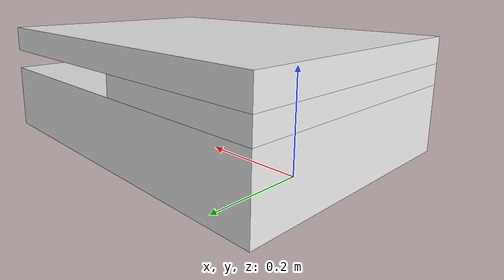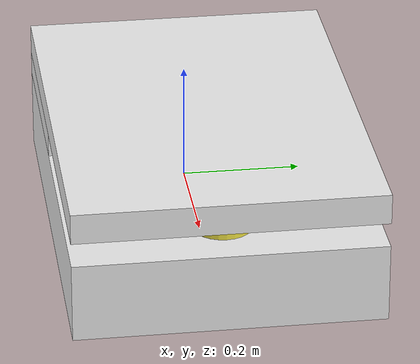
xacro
<?xml version="1.0" encoding="UTF-8"?>
<robot xmlns:xacro="http://www.ros.org/wiki/xacro" name="robot">
  <xacro:arg name="robot_prefix" default="" />

  <xacro:include filename="$(find packman_description)/urdf_xacro/robot.gazebo" />

  <!-- Base -->
  <link name="$(arg robot_prefix)base_link">
    <collision name="collision">
      <origin xyz="0.225 0 0.085" rpy="0 0 0"/>
      <geometry>
        <box size="0.7 0.5 0.13"/>
      </geometry>
    </collision>
    <inertial>
      <mass value="0.01"/>
      <inertia
        ixx="0.01" ixy="0.0" ixz="0.0"
        iyy="0.01" iyz="0.0"
        izz="0.01"/>
    </inertial>
    <visual>
      <origin xyz="0.225 0 0.085" rpy="0 0 0"/>
      <geometry>
        <box size="0.7 0.5 0.13"/>
      </geometry>
    </visual>
    <visual>
      <origin xyz="0.035 0 0.17" rpy="0 0 0"/>
      <geometry>
        <box size="0.32 0.5 0.04"/>
      </geometry>
    </visual>
    <visual>
      <origin xyz="0.225 0 0.215" rpy="0 0 0"/>
      <geometry>
        <box size="0.7 0.5 0.05"/>
      </geometry>
    </visual>
  </link>

  <!-- Left drive -->
  <joint name="$(arg robot_prefix)left_wheel" type="revolute">
    <parent link="$(arg robot_prefix)base_link"/>
    <child link="$(arg robot_prefix)left_wheel_link"/>
    <origin xyz="0 0.23 0.07525" rpy="${pi / 2} 0 0"/>
    <axis xyz="0 0 1"/>
    <limit lower="${-pi}" upper="${pi}" effort="10.0" velocity="30"/>
    <dynamics damping="0.0" friction="0.0"/>
  </joint>

  <link name="$(arg robot_prefix)left_wheel_link">
    <collision>
      <origin xyz="0 0 0" rpy="0 0 0"/>
      <geometry>
        <cylinder radius="0.08" length="0.04"/>
      </geometry>
    </collision>
  </link>

  <!-- Right drive -->
  <joint name="$(arg robot_prefix)right_wheel" type="revolute">
    <parent link="$(arg robot_prefix)base_link"/>
    <child link="$(arg robot_prefix)right_wheel_link"/>
    <origin xyz="0 -0.23 0.07525" rpy="${pi / 2} 0 0 "/>
    <axis xyz="0 0 -1"/>
    <limit lower="${-pi}" upper="${pi}" effort="10.0" velocity="30"/>
    <dynamics damping="0.0" friction="0.0"/>
  </joint>

  <link name="$(arg robot_prefix)right_wheel_link">
    <collision>
      <origin xyz="0 0 0" rpy="0 0 0"/>
      <geometry>
        <cylinder radius="0.155" length="0.04"/>
      </geometry>
    </collision>
  </link>

  <!-- Laser -->
  <joint name="$(arg robot_prefix)laser_joint" type="fixed">
    <axis xyz="0 1 0" />
    <origin xyz="0.47 0 0.17" rpy="0 0 0"/>
    <parent link="$(arg robot_prefix)base_link"/>
    <child link="$(arg robot_prefix)laser_link"/>
  </joint>

  <link name="$(arg robot_prefix)laser_link">
    <visual>
      <origin xyz="0 0 0" rpy="0 0 0"/>
      <geometry>
        <cylinder length="0.05" radius="0.05"/>
      </geometry>
    </visual>
  </link>
</robot>
